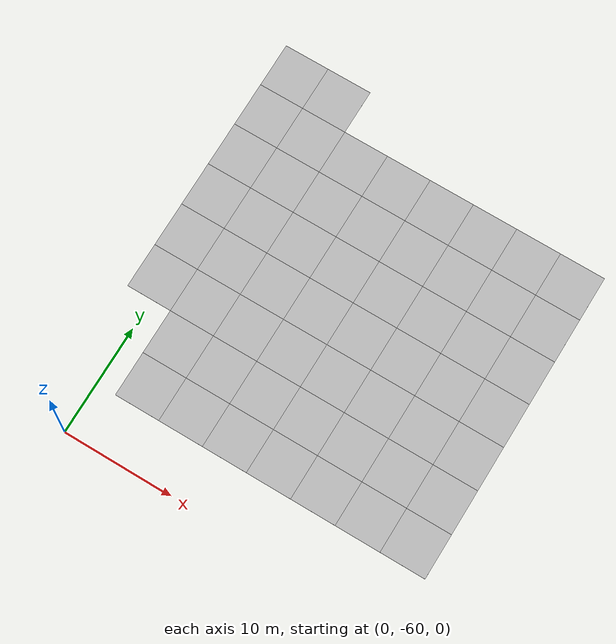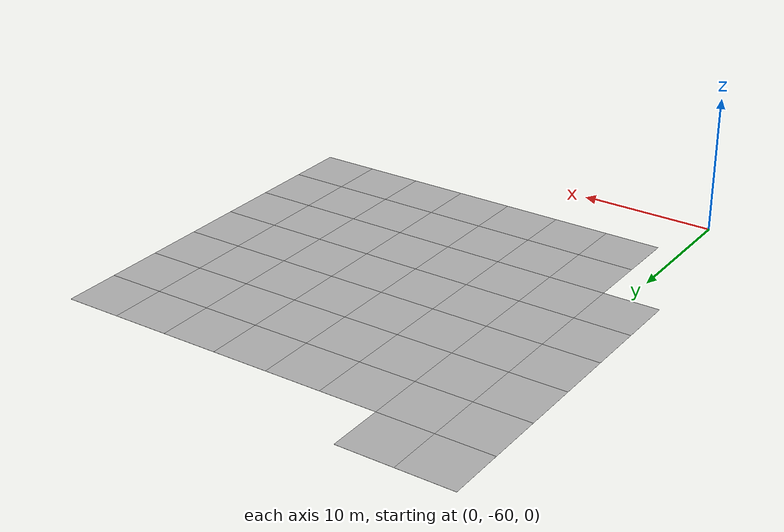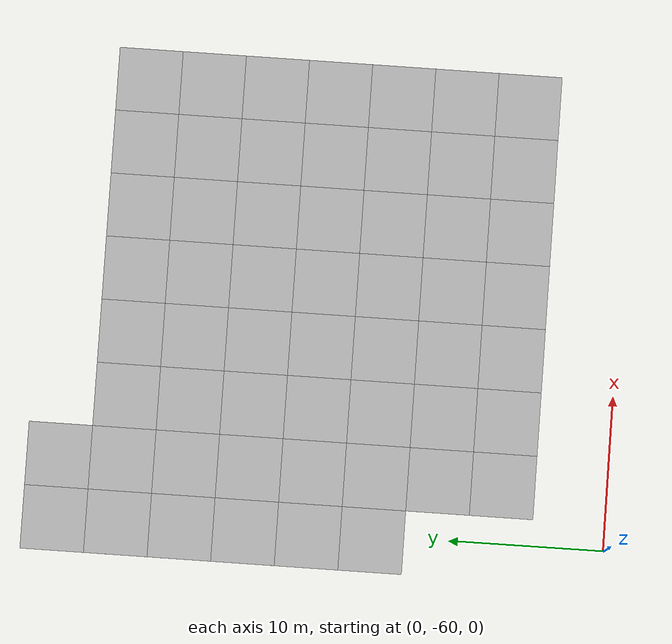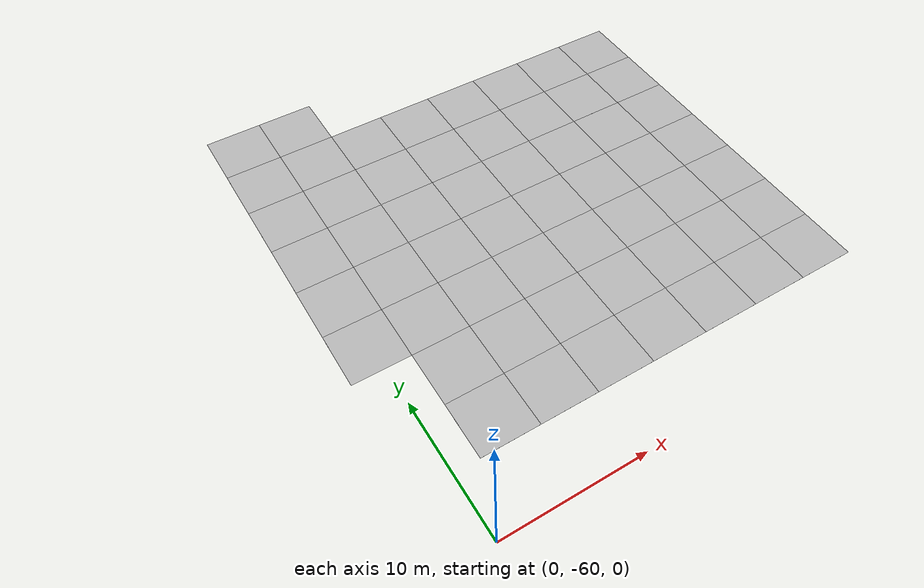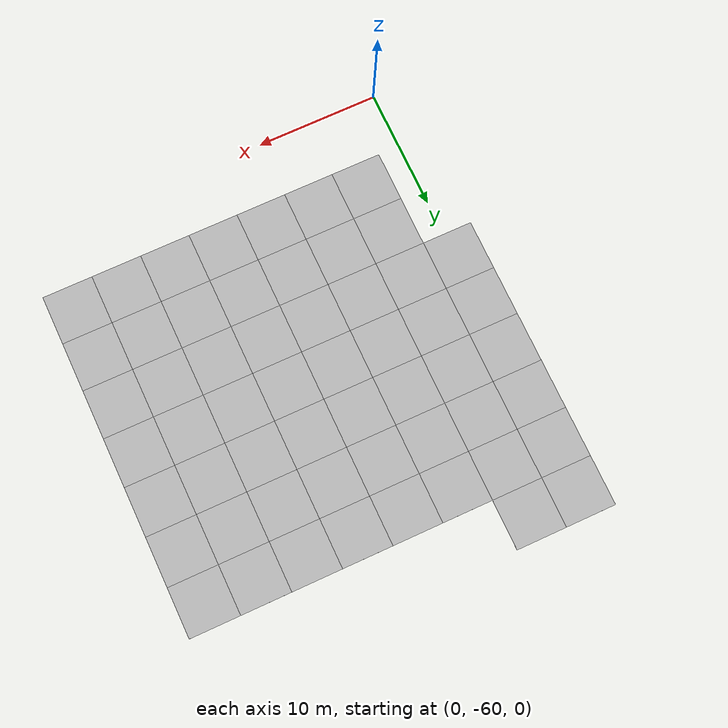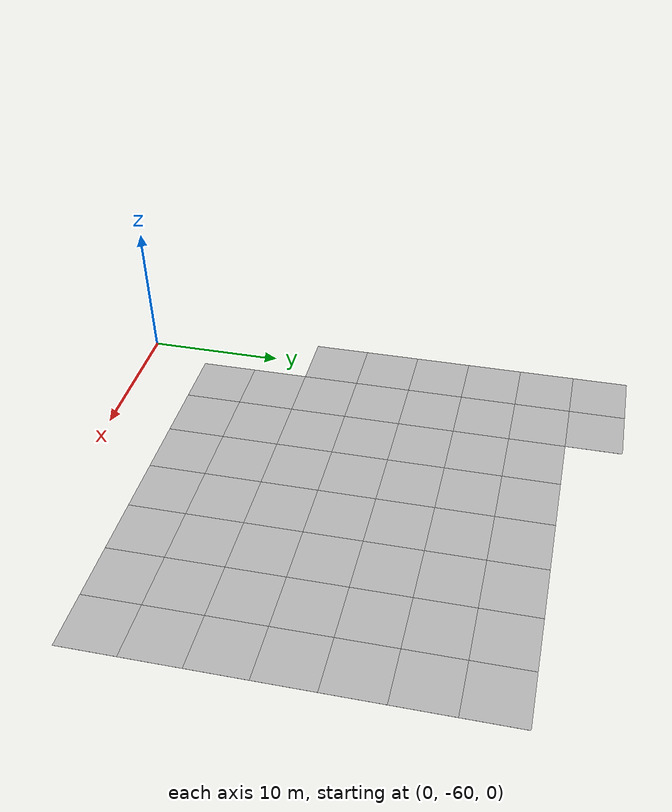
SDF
<sdf version="1.6">
 <world name="default">
  <model name="Tile/18-2">
   <static>1</static>
   <link name="link">
    <collision name="collision">
     <geometry><plane><normal>0 0 1</normal><size>4.096 4.096</size></plane></geometry>
     <surface><friction><ode><mu>100</mu><mu2>50</mu2></ode></friction></surface>
    </collision>
    <visual name="visual">
     <cast_shadows>0</cast_shadows>
     <geometry><plane><normal>0 0 1</normal><size>4.096 4.096</size></plane></geometry>
     <material>
      <script>
       <uri>file://materials/scripts</uri>
       <uri>file://materials/textures</uri>
       <name>Tile/5eab350b8220ac9944dbdfa4ac3288c7c17e24c3bf5df0dfcf6173d64dae00a1</name>
      </script>
     </material>
    </visual>
   </link>
   <pose>-0.2978730057677694 -45.104103275294236 0 0 -0 0</pose>
  </model>
  <model name="Tile/18-3">
   <static>1</static>
   <link name="link">
    <collision name="collision">
     <geometry><plane><normal>0 0 1</normal><size>4.096 4.096</size></plane></geometry>
     <surface><friction><ode><mu>100</mu><mu2>50</mu2></ode></friction></surface>
    </collision>
    <visual name="visual">
     <cast_shadows>0</cast_shadows>
     <geometry><plane><normal>0 0 1</normal><size>4.096 4.096</size></plane></geometry>
     <material>
      <script>
       <uri>file://materials/scripts</uri>
       <uri>file://materials/textures</uri>
       <name>Tile/5eab350b8220ac9944dbdfa4ac3288c7c17e24c3bf5df0dfcf6173d64dae00a1</name>
      </script>
     </material>
    </visual>
   </link>
   <pose>-0.2978730057677694 -41.00810327529424 0 0 -0 0</pose>
  </model>
  <model name="Tile/18-4">
   <static>1</static>
   <link name="link">
    <collision name="collision">
     <geometry><plane><normal>0 0 1</normal><size>4.096 4.096</size></plane></geometry>
     <surface><friction><ode><mu>100</mu><mu2>50</mu2></ode></friction></surface>
    </collision>
    <visual name="visual">
     <cast_shadows>0</cast_shadows>
     <geometry><plane><normal>0 0 1</normal><size>4.096 4.096</size></plane></geometry>
     <material>
      <script>
       <uri>file://materials/scripts</uri>
       <uri>file://materials/textures</uri>
       <name>Tile/5eab350b8220ac9944dbdfa4ac3288c7c17e24c3bf5df0dfcf6173d64dae00a1</name>
      </script>
     </material>
    </visual>
   </link>
   <pose>-0.2978730057677694 -36.91210327529424 0 0 -0 0</pose>
  </model>
  <model name="Tile/18-5">
   <static>1</static>
   <link name="link">
    <collision name="collision">
     <geometry><plane><normal>0 0 1</normal><size>4.096 4.096</size></plane></geometry>
     <surface><friction><ode><mu>100</mu><mu2>50</mu2></ode></friction></surface>
    </collision>
    <visual name="visual">
     <cast_shadows>0</cast_shadows>
     <geometry><plane><normal>0 0 1</normal><size>4.096 4.096</size></plane></geometry>
     <material>
      <script>
       <uri>file://materials/scripts</uri>
       <uri>file://materials/textures</uri>
       <name>Tile/87c2c5636cd9016cbadbebf35a038894204da70c25fd8e602689a2077810d4dc</name>
      </script>
     </material>
    </visual>
   </link>
   <pose>-0.2978730057677694 -32.81610327529424 0 0 -0 0</pose>
  </model>
  <model name="Tile/18-6">
   <static>1</static>
   <link name="link">
    <collision name="collision">
     <geometry><plane><normal>0 0 1</normal><size>4.096 4.096</size></plane></geometry>
     <surface><friction><ode><mu>100</mu><mu2>50</mu2></ode></friction></surface>
    </collision>
    <visual name="visual">
     <cast_shadows>0</cast_shadows>
     <geometry><plane><normal>0 0 1</normal><size>4.096 4.096</size></plane></geometry>
     <material>
      <script>
       <uri>file://materials/scripts</uri>
       <uri>file://materials/textures</uri>
       <name>Tile/5eab350b8220ac9944dbdfa4ac3288c7c17e24c3bf5df0dfcf6173d64dae00a1</name>
      </script>
     </material>
    </visual>
   </link>
   <pose>-0.2978730057677694 -28.72010327529424 0 0 -0 0</pose>
  </model>
  <model name="Tile/18-7">
   <static>1</static>
   <link name="link">
    <collision name="collision">
     <geometry><plane><normal>0 0 1</normal><size>4.096 4.096</size></plane></geometry>
     <surface><friction><ode><mu>100</mu><mu2>50</mu2></ode></friction></surface>
    </collision>
    <visual name="visual">
     <cast_shadows>0</cast_shadows>
     <geometry><plane><normal>0 0 1</normal><size>4.096 4.096</size></plane></geometry>
     <material>
      <script>
       <uri>file://materials/scripts</uri>
       <uri>file://materials/textures</uri>
       <name>Tile/5eab350b8220ac9944dbdfa4ac3288c7c17e24c3bf5df0dfcf6173d64dae00a1</name>
      </script>
     </material>
    </visual>
   </link>
   <pose>-0.2978730057677694 -24.62410327529424 0 0 -0 0</pose>
  </model>
  <model name="Tile/19-0">
   <static>1</static>
   <link name="link">
    <collision name="collision">
     <geometry><plane><normal>0 0 1</normal><size>4.096 4.096</size></plane></geometry>
     <surface><friction><ode><mu>100</mu><mu2>50</mu2></ode></friction></surface>
    </collision>
    <visual name="visual">
     <cast_shadows>0</cast_shadows>
     <geometry><plane><normal>0 0 1</normal><size>4.096 4.096</size></plane></geometry>
     <material>
      <script>
       <uri>file://materials/scripts</uri>
       <uri>file://materials/textures</uri>
       <name>Tile/5eab350b8220ac9944dbdfa4ac3288c7c17e24c3bf5df0dfcf6173d64dae00a1</name>
      </script>
     </material>
    </visual>
   </link>
   <pose>3.798126994232234 -53.296103275294236 0 0 -0 0</pose>
  </model>
  <model name="Tile/19-1">
   <static>1</static>
   <link name="link">
    <collision name="collision">
     <geometry><plane><normal>0 0 1</normal><size>4.096 4.096</size></plane></geometry>
     <surface><friction><ode><mu>100</mu><mu2>50</mu2></ode></friction></surface>
    </collision>
    <visual name="visual">
     <cast_shadows>0</cast_shadows>
     <geometry><plane><normal>0 0 1</normal><size>4.096 4.096</size></plane></geometry>
     <material>
      <script>
       <uri>file://materials/scripts</uri>
       <uri>file://materials/textures</uri>
       <name>Tile/5eab350b8220ac9944dbdfa4ac3288c7c17e24c3bf5df0dfcf6173d64dae00a1</name>
      </script>
     </material>
    </visual>
   </link>
   <pose>3.798126994232234 -49.20010327529424 0 0 -0 0</pose>
  </model>
  <model name="Tile/19-2">
   <static>1</static>
   <link name="link">
    <collision name="collision">
     <geometry><plane><normal>0 0 1</normal><size>4.096 4.096</size></plane></geometry>
     <surface><friction><ode><mu>100</mu><mu2>50</mu2></ode></friction></surface>
    </collision>
    <visual name="visual">
     <cast_shadows>0</cast_shadows>
     <geometry><plane><normal>0 0 1</normal><size>4.096 4.096</size></plane></geometry>
     <material>
      <script>
       <uri>file://materials/scripts</uri>
       <uri>file://materials/textures</uri>
       <name>Tile/5eab350b8220ac9944dbdfa4ac3288c7c17e24c3bf5df0dfcf6173d64dae00a1</name>
      </script>
     </material>
    </visual>
   </link>
   <pose>3.798126994232234 -45.104103275294236 0 0 -0 0</pose>
  </model>
  <model name="Tile/19-3">
   <static>1</static>
   <link name="link">
    <collision name="collision">
     <geometry><plane><normal>0 0 1</normal><size>4.096 4.096</size></plane></geometry>
     <surface><friction><ode><mu>100</mu><mu2>50</mu2></ode></friction></surface>
    </collision>
    <visual name="visual">
     <cast_shadows>0</cast_shadows>
     <geometry><plane><normal>0 0 1</normal><size>4.096 4.096</size></plane></geometry>
     <material>
      <script>
       <uri>file://materials/scripts</uri>
       <uri>file://materials/textures</uri>
       <name>Tile/5eab350b8220ac9944dbdfa4ac3288c7c17e24c3bf5df0dfcf6173d64dae00a1</name>
      </script>
     </material>
    </visual>
   </link>
   <pose>3.798126994232234 -41.00810327529424 0 0 -0 0</pose>
  </model>
  <model name="Tile/19-4">
   <static>1</static>
   <link name="link">
    <collision name="collision">
     <geometry><plane><normal>0 0 1</normal><size>4.096 4.096</size></plane></geometry>
     <surface><friction><ode><mu>100</mu><mu2>50</mu2></ode></friction></surface>
    </collision>
    <visual name="visual">
     <cast_shadows>0</cast_shadows>
     <geometry><plane><normal>0 0 1</normal><size>4.096 4.096</size></plane></geometry>
     <material>
      <script>
       <uri>file://materials/scripts</uri>
       <uri>file://materials/textures</uri>
       <name>Tile/5eab350b8220ac9944dbdfa4ac3288c7c17e24c3bf5df0dfcf6173d64dae00a1</name>
      </script>
     </material>
    </visual>
   </link>
   <pose>3.798126994232234 -36.91210327529424 0 0 -0 0</pose>
  </model>
  <model name="Tile/19-5">
   <static>1</static>
   <link name="link">
    <collision name="collision">
     <geometry><plane><normal>0 0 1</normal><size>4.096 4.096</size></plane></geometry>
     <surface><friction><ode><mu>100</mu><mu2>50</mu2></ode></friction></surface>
    </collision>
    <visual name="visual">
     <cast_shadows>0</cast_shadows>
     <geometry><plane><normal>0 0 1</normal><size>4.096 4.096</size></plane></geometry>
     <material>
      <script>
       <uri>file://materials/scripts</uri>
       <uri>file://materials/textures</uri>
       <name>Tile/03919b6bc6b4487e9b6dff6141cb65a3beb0281b3a35f18b1a4fb880b6a8d586</name>
      </script>
     </material>
    </visual>
   </link>
   <pose>3.798126994232234 -32.81610327529424 0 0 -0 0</pose>
  </model>
  <model name="Tile/19-6">
   <static>1</static>
   <link name="link">
    <collision name="collision">
     <geometry><plane><normal>0 0 1</normal><size>4.096 4.096</size></plane></geometry>
     <surface><friction><ode><mu>100</mu><mu2>50</mu2></ode></friction></surface>
    </collision>
    <visual name="visual">
     <cast_shadows>0</cast_shadows>
     <geometry><plane><normal>0 0 1</normal><size>4.096 4.096</size></plane></geometry>
     <material>
      <script>
       <uri>file://materials/scripts</uri>
       <uri>file://materials/textures</uri>
       <name>Tile/77d614ed30fff7b0ef706c1ce687feef76113b973b6084c496e85db4d1325c98</name>
      </script>
     </material>
    </visual>
   </link>
   <pose>3.798126994232234 -28.72010327529424 0 0 -0 0</pose>
  </model>
  <model name="Tile/19-7">
   <static>1</static>
   <link name="link">
    <collision name="collision">
     <geometry><plane><normal>0 0 1</normal><size>4.096 4.096</size></plane></geometry>
     <surface><friction><ode><mu>100</mu><mu2>50</mu2></ode></friction></surface>
    </collision>
    <visual name="visual">
     <cast_shadows>0</cast_shadows>
     <geometry><plane><normal>0 0 1</normal><size>4.096 4.096</size></plane></geometry>
     <material>
      <script>
       <uri>file://materials/scripts</uri>
       <uri>file://materials/textures</uri>
       <name>Tile/5eab350b8220ac9944dbdfa4ac3288c7c17e24c3bf5df0dfcf6173d64dae00a1</name>
      </script>
     </material>
    </visual>
   </link>
   <pose>3.798126994232234 -24.62410327529424 0 0 -0 0</pose>
  </model>
  <model name="Tile/20-0">
   <static>1</static>
   <link name="link">
    <collision name="collision">
     <geometry><plane><normal>0 0 1</normal><size>4.096 4.096</size></plane></geometry>
     <surface><friction><ode><mu>100</mu><mu2>50</mu2></ode></friction></surface>
    </collision>
    <visual name="visual">
     <cast_shadows>0</cast_shadows>
     <geometry><plane><normal>0 0 1</normal><size>4.096 4.096</size></plane></geometry>
     <material>
      <script>
       <uri>file://materials/scripts</uri>
       <uri>file://materials/textures</uri>
       <name>Tile/5eab350b8220ac9944dbdfa4ac3288c7c17e24c3bf5df0dfcf6173d64dae00a1</name>
      </script>
     </material>
    </visual>
   </link>
   <pose>7.894126994232238 -53.296103275294236 0 0 -0 0</pose>
  </model>
  <model name="Tile/20-1">
   <static>1</static>
   <link name="link">
    <collision name="collision">
     <geometry><plane><normal>0 0 1</normal><size>4.096 4.096</size></plane></geometry>
     <surface><friction><ode><mu>100</mu><mu2>50</mu2></ode></friction></surface>
    </collision>
    <visual name="visual">
     <cast_shadows>0</cast_shadows>
     <geometry><plane><normal>0 0 1</normal><size>4.096 4.096</size></plane></geometry>
     <material>
      <script>
       <uri>file://materials/scripts</uri>
       <uri>file://materials/textures</uri>
       <name>Tile/5eab350b8220ac9944dbdfa4ac3288c7c17e24c3bf5df0dfcf6173d64dae00a1</name>
      </script>
     </material>
    </visual>
   </link>
   <pose>7.894126994232238 -49.20010327529424 0 0 -0 0</pose>
  </model>
  <model name="Tile/20-2">
   <static>1</static>
   <link name="link">
    <collision name="collision">
     <geometry><plane><normal>0 0 1</normal><size>4.096 4.096</size></plane></geometry>
     <surface><friction><ode><mu>100</mu><mu2>50</mu2></ode></friction></surface>
    </collision>
    <visual name="visual">
     <cast_shadows>0</cast_shadows>
     <geometry><plane><normal>0 0 1</normal><size>4.096 4.096</size></plane></geometry>
     <material>
      <script>
       <uri>file://materials/scripts</uri>
       <uri>file://materials/textures</uri>
       <name>Tile/5eab350b8220ac9944dbdfa4ac3288c7c17e24c3bf5df0dfcf6173d64dae00a1</name>
      </script>
     </material>
    </visual>
   </link>
   <pose>7.894126994232238 -45.104103275294236 0 0 -0 0</pose>
  </model>
  <model name="Tile/20-3">
   <static>1</static>
   <link name="link">
    <collision name="collision">
     <geometry><plane><normal>0 0 1</normal><size>4.096 4.096</size></plane></geometry>
     <surface><friction><ode><mu>100</mu><mu2>50</mu2></ode></friction></surface>
    </collision>
    <visual name="visual">
     <cast_shadows>0</cast_shadows>
     <geometry><plane><normal>0 0 1</normal><size>4.096 4.096</size></plane></geometry>
     <material>
      <script>
       <uri>file://materials/scripts</uri>
       <uri>file://materials/textures</uri>
       <name>Tile/5eab350b8220ac9944dbdfa4ac3288c7c17e24c3bf5df0dfcf6173d64dae00a1</name>
      </script>
     </material>
    </visual>
   </link>
   <pose>7.894126994232238 -41.00810327529424 0 0 -0 0</pose>
  </model>
  <model name="Tile/20-4">
   <static>1</static>
   <link name="link">
    <collision name="collision">
     <geometry><plane><normal>0 0 1</normal><size>4.096 4.096</size></plane></geometry>
     <surface><friction><ode><mu>100</mu><mu2>50</mu2></ode></friction></surface>
    </collision>
    <visual name="visual">
     <cast_shadows>0</cast_shadows>
     <geometry><plane><normal>0 0 1</normal><size>4.096 4.096</size></plane></geometry>
     <material>
      <script>
       <uri>file://materials/scripts</uri>
       <uri>file://materials/textures</uri>
       <name>Tile/5eab350b8220ac9944dbdfa4ac3288c7c17e24c3bf5df0dfcf6173d64dae00a1</name>
      </script>
     </material>
    </visual>
   </link>
   <pose>7.894126994232238 -36.91210327529424 0 0 -0 0</pose>
  </model>
  <model name="Tile/20-5">
   <static>1</static>
   <link name="link">
    <collision name="collision">
     <geometry><plane><normal>0 0 1</normal><size>4.096 4.096</size></plane></geometry>
     <surface><friction><ode><mu>100</mu><mu2>50</mu2></ode></friction></surface>
    </collision>
    <visual name="visual">
     <cast_shadows>0</cast_shadows>
     <geometry><plane><normal>0 0 1</normal><size>4.096 4.096</size></plane></geometry>
     <material>
      <script>
       <uri>file://materials/scripts</uri>
       <uri>file://materials/textures</uri>
       <name>Tile/79fe78105b7f0f6554afedb78a3caf857d4519be2fc08a8871276f0ccac7632c</name>
      </script>
     </material>
    </visual>
   </link>
   <pose>7.894126994232238 -32.81610327529424 0 0 -0 0</pose>
  </model>
  <model name="Tile/20-6">
   <static>1</static>
   <link name="link">
    <collision name="collision">
     <geometry><plane><normal>0 0 1</normal><size>4.096 4.096</size></plane></geometry>
     <surface><friction><ode><mu>100</mu><mu2>50</mu2></ode></friction></surface>
    </collision>
    <visual name="visual">
     <cast_shadows>0</cast_shadows>
     <geometry><plane><normal>0 0 1</normal><size>4.096 4.096</size></plane></geometry>
     <material>
      <script>
       <uri>file://materials/scripts</uri>
       <uri>file://materials/textures</uri>
       <name>Tile/47748ad4abebf0f7712acb740fad4b84d475190b5b81a9c2f60942eb88e826d0</name>
      </script>
     </material>
    </visual>
   </link>
   <pose>7.894126994232238 -28.72010327529424 0 0 -0 0</pose>
  </model>
  <model name="Tile/21-0">
   <static>1</static>
   <link name="link">
    <collision name="collision">
     <geometry><plane><normal>0 0 1</normal><size>4.096 4.096</size></plane></geometry>
     <surface><friction><ode><mu>100</mu><mu2>50</mu2></ode></friction></surface>
    </collision>
    <visual name="visual">
     <cast_shadows>0</cast_shadows>
     <geometry><plane><normal>0 0 1</normal><size>4.096 4.096</size></plane></geometry>
     <material>
      <script>
       <uri>file://materials/scripts</uri>
       <uri>file://materials/textures</uri>
       <name>Tile/5eab350b8220ac9944dbdfa4ac3288c7c17e24c3bf5df0dfcf6173d64dae00a1</name>
      </script>
     </material>
    </visual>
   </link>
   <pose>11.990126994232227 -53.296103275294236 0 0 -0 0</pose>
  </model>
  <model name="Tile/21-1">
   <static>1</static>
   <link name="link">
    <collision name="collision">
     <geometry><plane><normal>0 0 1</normal><size>4.096 4.096</size></plane></geometry>
     <surface><friction><ode><mu>100</mu><mu2>50</mu2></ode></friction></surface>
    </collision>
    <visual name="visual">
     <cast_shadows>0</cast_shadows>
     <geometry><plane><normal>0 0 1</normal><size>4.096 4.096</size></plane></geometry>
     <material>
      <script>
       <uri>file://materials/scripts</uri>
       <uri>file://materials/textures</uri>
       <name>Tile/5eab350b8220ac9944dbdfa4ac3288c7c17e24c3bf5df0dfcf6173d64dae00a1</name>
      </script>
     </material>
    </visual>
   </link>
   <pose>11.990126994232227 -49.20010327529424 0 0 -0 0</pose>
  </model>
  <model name="Tile/21-2">
   <static>1</static>
   <link name="link">
    <collision name="collision">
     <geometry><plane><normal>0 0 1</normal><size>4.096 4.096</size></plane></geometry>
     <surface><friction><ode><mu>100</mu><mu2>50</mu2></ode></friction></surface>
    </collision>
    <visual name="visual">
     <cast_shadows>0</cast_shadows>
     <geometry><plane><normal>0 0 1</normal><size>4.096 4.096</size></plane></geometry>
     <material>
      <script>
       <uri>file://materials/scripts</uri>
       <uri>file://materials/textures</uri>
       <name>Tile/5eab350b8220ac9944dbdfa4ac3288c7c17e24c3bf5df0dfcf6173d64dae00a1</name>
      </script>
     </material>
    </visual>
   </link>
   <pose>11.990126994232227 -45.104103275294236 0 0 -0 0</pose>
  </model>
  <model name="Tile/21-3">
   <static>1</static>
   <link name="link">
    <collision name="collision">
     <geometry><plane><normal>0 0 1</normal><size>4.096 4.096</size></plane></geometry>
     <surface><friction><ode><mu>100</mu><mu2>50</mu2></ode></friction></surface>
    </collision>
    <visual name="visual">
     <cast_shadows>0</cast_shadows>
     <geometry><plane><normal>0 0 1</normal><size>4.096 4.096</size></plane></geometry>
     <material>
      <script>
       <uri>file://materials/scripts</uri>
       <uri>file://materials/textures</uri>
       <name>Tile/5eab350b8220ac9944dbdfa4ac3288c7c17e24c3bf5df0dfcf6173d64dae00a1</name>
      </script>
     </material>
    </visual>
   </link>
   <pose>11.990126994232227 -41.00810327529424 0 0 -0 0</pose>
  </model>
  <model name="Tile/21-4">
   <static>1</static>
   <link name="link">
    <collision name="collision">
     <geometry><plane><normal>0 0 1</normal><size>4.096 4.096</size></plane></geometry>
     <surface><friction><ode><mu>100</mu><mu2>50</mu2></ode></friction></surface>
    </collision>
    <visual name="visual">
     <cast_shadows>0</cast_shadows>
     <geometry><plane><normal>0 0 1</normal><size>4.096 4.096</size></plane></geometry>
     <material>
      <script>
       <uri>file://materials/scripts</uri>
       <uri>file://materials/textures</uri>
       <name>Tile/5eab350b8220ac9944dbdfa4ac3288c7c17e24c3bf5df0dfcf6173d64dae00a1</name>
      </script>
     </material>
    </visual>
   </link>
   <pose>11.990126994232227 -36.91210327529424 0 0 -0 0</pose>
  </model>
  <model name="Tile/21-5">
   <static>1</static>
   <link name="link">
    <collision name="collision">
     <geometry><plane><normal>0 0 1</normal><size>4.096 4.096</size></plane></geometry>
     <surface><friction><ode><mu>100</mu><mu2>50</mu2></ode></friction></surface>
    </collision>
    <visual name="visual">
     <cast_shadows>0</cast_shadows>
     <geometry><plane><normal>0 0 1</normal><size>4.096 4.096</size></plane></geometry>
     <material>
      <script>
       <uri>file://materials/scripts</uri>
       <uri>file://materials/textures</uri>
       <name>Tile/5eab350b8220ac9944dbdfa4ac3288c7c17e24c3bf5df0dfcf6173d64dae00a1</name>
      </script>
     </material>
    </visual>
   </link>
   <pose>11.990126994232227 -32.81610327529424 0 0 -0 0</pose>
  </model>
  <model name="Tile/21-6">
   <static>1</static>
   <link name="link">
    <collision name="collision">
     <geometry><plane><normal>0 0 1</normal><size>4.096 4.096</size></plane></geometry>
     <surface><friction><ode><mu>100</mu><mu2>50</mu2></ode></friction></surface>
    </collision>
    <visual name="visual">
     <cast_shadows>0</cast_shadows>
     <geometry><plane><normal>0 0 1</normal><size>4.096 4.096</size></plane></geometry>
     <material>
      <script>
       <uri>file://materials/scripts</uri>
       <uri>file://materials/textures</uri>
       <name>Tile/78e5009340789c42b99c7e99964559edfdca05bebd1ca04c5e0f6b9799ada364</name>
      </script>
     </material>
    </visual>
   </link>
   <pose>11.990126994232227 -28.72010327529424 0 0 -0 0</pose>
  </model>
  <model name="Tile/22-0">
   <static>1</static>
   <link name="link">
    <collision name="collision">
     <geometry><plane><normal>0 0 1</normal><size>4.096 4.096</size></plane></geometry>
     <surface><friction><ode><mu>100</mu><mu2>50</mu2></ode></friction></surface>
    </collision>
    <visual name="visual">
     <cast_shadows>0</cast_shadows>
     <geometry><plane><normal>0 0 1</normal><size>4.096 4.096</size></plane></geometry>
     <material>
      <script>
       <uri>file://materials/scripts</uri>
       <uri>file://materials/textures</uri>
       <name>Tile/5eab350b8220ac9944dbdfa4ac3288c7c17e24c3bf5df0dfcf6173d64dae00a1</name>
      </script>
     </material>
    </visual>
   </link>
   <pose>16.08612699423223 -53.296103275294236 0 0 -0 0</pose>
  </model>
  <model name="Tile/22-1">
   <static>1</static>
   <link name="link">
    <collision name="collision">
     <geometry><plane><normal>0 0 1</normal><size>4.096 4.096</size></plane></geometry>
     <surface><friction><ode><mu>100</mu><mu2>50</mu2></ode></friction></surface>
    </collision>
    <visual name="visual">
     <cast_shadows>0</cast_shadows>
     <geometry><plane><normal>0 0 1</normal><size>4.096 4.096</size></plane></geometry>
     <material>
      <script>
       <uri>file://materials/scripts</uri>
       <uri>file://materials/textures</uri>
       <name>Tile/5eab350b8220ac9944dbdfa4ac3288c7c17e24c3bf5df0dfcf6173d64dae00a1</name>
      </script>
     </material>
    </visual>
   </link>
   <pose>16.08612699423223 -49.20010327529424 0 0 -0 0</pose>
  </model>
  <model name="Tile/22-2">
   <static>1</static>
   <link name="link">
    <collision name="collision">
     <geometry><plane><normal>0 0 1</normal><size>4.096 4.096</size></plane></geometry>
     <surface><friction><ode><mu>100</mu><mu2>50</mu2></ode></friction></surface>
    </collision>
    <visual name="visual">
     <cast_shadows>0</cast_shadows>
     <geometry><plane><normal>0 0 1</normal><size>4.096 4.096</size></plane></geometry>
     <material>
      <script>
       <uri>file://materials/scripts</uri>
       <uri>file://materials/textures</uri>
       <name>Tile/5eab350b8220ac9944dbdfa4ac3288c7c17e24c3bf5df0dfcf6173d64dae00a1</name>
      </script>
     </material>
    </visual>
   </link>
   <pose>16.08612699423223 -45.104103275294236 0 0 -0 0</pose>
  </model>
  <model name="Tile/22-3">
   <static>1</static>
   <link name="link">
    <collision name="collision">
     <geometry><plane><normal>0 0 1</normal><size>4.096 4.096</size></plane></geometry>
     <surface><friction><ode><mu>100</mu><mu2>50</mu2></ode></friction></surface>
    </collision>
    <visual name="visual">
     <cast_shadows>0</cast_shadows>
     <geometry><plane><normal>0 0 1</normal><size>4.096 4.096</size></plane></geometry>
     <material>
      <script>
       <uri>file://materials/scripts</uri>
       <uri>file://materials/textures</uri>
       <name>Tile/5eab350b8220ac9944dbdfa4ac3288c7c17e24c3bf5df0dfcf6173d64dae00a1</name>
      </script>
     </material>
    </visual>
   </link>
   <pose>16.08612699423223 -41.00810327529424 0 0 -0 0</pose>
  </model>
  <model name="Tile/22-4">
   <static>1</static>
   <link name="link">
    <collision name="collision">
     <geometry><plane><normal>0 0 1</normal><size>4.096 4.096</size></plane></geometry>
     <surface><friction><ode><mu>100</mu><mu2>50</mu2></ode></friction></surface>
    </collision>
    <visual name="visual">
     <cast_shadows>0</cast_shadows>
     <geometry><plane><normal>0 0 1</normal><size>4.096 4.096</size></plane></geometry>
     <material>
      <script>
       <uri>file://materials/scripts</uri>
       <uri>file://materials/textures</uri>
       <name>Tile/5eab350b8220ac9944dbdfa4ac3288c7c17e24c3bf5df0dfcf6173d64dae00a1</name>
      </script>
     </material>
    </visual>
   </link>
   <pose>16.08612699423223 -36.91210327529424 0 0 -0 0</pose>
  </model>
  <model name="Tile/22-5">
   <static>1</static>
   <link name="link">
    <collision name="collision">
     <geometry><plane><normal>0 0 1</normal><size>4.096 4.096</size></plane></geometry>
     <surface><friction><ode><mu>100</mu><mu2>50</mu2></ode></friction></surface>
    </collision>
    <visual name="visual">
     <cast_shadows>0</cast_shadows>
     <geometry><plane><normal>0 0 1</normal><size>4.096 4.096</size></plane></geometry>
     <material>
      <script>
       <uri>file://materials/scripts</uri>
       <uri>file://materials/textures</uri>
       <name>Tile/5eab350b8220ac9944dbdfa4ac3288c7c17e24c3bf5df0dfcf6173d64dae00a1</name>
      </script>
     </material>
    </visual>
   </link>
   <pose>16.08612699423223 -32.81610327529424 0 0 -0 0</pose>
  </model>
  <model name="Tile/22-6">
   <static>1</static>
   <link name="link">
    <collision name="collision">
     <geometry><plane><normal>0 0 1</normal><size>4.096 4.096</size></plane></geometry>
     <surface><friction><ode><mu>100</mu><mu2>50</mu2></ode></friction></surface>
    </collision>
    <visual name="visual">
     <cast_shadows>0</cast_shadows>
     <geometry><plane><normal>0 0 1</normal><size>4.096 4.096</size></plane></geometry>
     <material>
      <script>
       <uri>file://materials/scripts</uri>
       <uri>file://materials/textures</uri>
       <name>Tile/d5778813cf193a43d348f642ca01bfe69e03dec962a3f7cfdc581074ffa94b49</name>
      </script>
     </material>
    </visual>
   </link>
   <pose>16.08612699423223 -28.72010327529424 0 0 -0 0</pose>
  </model>
  <model name="Tile/23-0">
   <static>1</static>
   <link name="link">
    <collision name="collision">
     <geometry><plane><normal>0 0 1</normal><size>4.096 4.096</size></plane></geometry>
     <surface><friction><ode><mu>100</mu><mu2>50</mu2></ode></friction></surface>
    </collision>
    <visual name="visual">
     <cast_shadows>0</cast_shadows>
     <geometry><plane><normal>0 0 1</normal><size>4.096 4.096</size></plane></geometry>
     <material>
      <script>
       <uri>file://materials/scripts</uri>
       <uri>file://materials/textures</uri>
       <name>Tile/5eab350b8220ac9944dbdfa4ac3288c7c17e24c3bf5df0dfcf6173d64dae00a1</name>
      </script>
     </material>
    </visual>
   </link>
   <pose>20.182126994232235 -53.296103275294236 0 0 -0 0</pose>
  </model>
  <model name="Tile/23-1">
   <static>1</static>
   <link name="link">
    <collision name="collision">
     <geometry><plane><normal>0 0 1</normal><size>4.096 4.096</size></plane></geometry>
     <surface><friction><ode><mu>100</mu><mu2>50</mu2></ode></friction></surface>
    </collision>
    <visual name="visual">
     <cast_shadows>0</cast_shadows>
     <geometry><plane><normal>0 0 1</normal><size>4.096 4.096</size></plane></geometry>
     <material>
      <script>
       <uri>file://materials/scripts</uri>
       <uri>file://materials/textures</uri>
       <name>Tile/5eab350b8220ac9944dbdfa4ac3288c7c17e24c3bf5df0dfcf6173d64dae00a1</name>
      </script>
     </material>
    </visual>
   </link>
   <pose>20.182126994232235 -49.20010327529424 0 0 -0 0</pose>
  </model>
  <model name="Tile/23-2">
   <static>1</static>
   <link name="link">
    <collision name="collision">
     <geometry><plane><normal>0 0 1</normal><size>4.096 4.096</size></plane></geometry>
     <surface><friction><ode><mu>100</mu><mu2>50</mu2></ode></friction></surface>
    </collision>
    <visual name="visual">
     <cast_shadows>0</cast_shadows>
     <geometry><plane><normal>0 0 1</normal><size>4.096 4.096</size></plane></geometry>
     <material>
      <script>
       <uri>file://materials/scripts</uri>
       <uri>file://materials/textures</uri>
       <name>Tile/5eab350b8220ac9944dbdfa4ac3288c7c17e24c3bf5df0dfcf6173d64dae00a1</name>
      </script>
     </material>
    </visual>
   </link>
   <pose>20.182126994232235 -45.104103275294236 0 0 -0 0</pose>
  </model>
  <model name="Tile/23-3">
   <static>1</static>
   <link name="link">
    <collision name="collision">
     <geometry><plane><normal>0 0 1</normal><size>4.096 4.096</size></plane></geometry>
     <surface><friction><ode><mu>100</mu><mu2>50</mu2></ode></friction></surface>
    </collision>
    <visual name="visual">
     <cast_shadows>0</cast_shadows>
     <geometry><plane><normal>0 0 1</normal><size>4.096 4.096</size></plane></geometry>
     <material>
      <script>
       <uri>file://materials/scripts</uri>
       <uri>file://materials/textures</uri>
       <name>Tile/5eab350b8220ac9944dbdfa4ac3288c7c17e24c3bf5df0dfcf6173d64dae00a1</name>
      </script>
     </material>
    </visual>
   </link>
   <pose>20.182126994232235 -41.00810327529424 0 0 -0 0</pose>
  </model>
  <model name="Tile/23-4">
   <static>1</static>
   <link name="link">
    <collision name="collision">
     <geometry><plane><normal>0 0 1</normal><size>4.096 4.096</size></plane></geometry>
     <surface><friction><ode><mu>100</mu><mu2>50</mu2></ode></friction></surface>
    </collision>
    <visual name="visual">
     <cast_shadows>0</cast_shadows>
     <geometry><plane><normal>0 0 1</normal><size>4.096 4.096</size></plane></geometry>
     <material>
      <script>
       <uri>file://materials/scripts</uri>
       <uri>file://materials/textures</uri>
       <name>Tile/5eab350b8220ac9944dbdfa4ac3288c7c17e24c3bf5df0dfcf6173d64dae00a1</name>
      </script>
     </material>
    </visual>
   </link>
   <pose>20.182126994232235 -36.91210327529424 0 0 -0 0</pose>
  </model>
  <model name="Tile/23-5">
   <static>1</static>
   <link name="link">
    <collision name="collision">
     <geometry><plane><normal>0 0 1</normal><size>4.096 4.096</size></plane></geometry>
     <surface><friction><ode><mu>100</mu><mu2>50</mu2></ode></friction></surface>
    </collision>
    <visual name="visual">
     <cast_shadows>0</cast_shadows>
     <geometry><plane><normal>0 0 1</normal><size>4.096 4.096</size></plane></geometry>
     <material>
      <script>
       <uri>file://materials/scripts</uri>
       <uri>file://materials/textures</uri>
       <name>Tile/5eab350b8220ac9944dbdfa4ac3288c7c17e24c3bf5df0dfcf6173d64dae00a1</name>
      </script>
     </material>
    </visual>
   </link>
   <pose>20.182126994232235 -32.81610327529424 0 0 -0 0</pose>
  </model>
  <model name="Tile/23-6">
   <static>1</static>
   <link name="link">
    <collision name="collision">
     <geometry><plane><normal>0 0 1</normal><size>4.096 4.096</size></plane></geometry>
     <surface><friction><ode><mu>100</mu><mu2>50</mu2></ode></friction></surface>
    </collision>
    <visual name="visual">
     <cast_shadows>0</cast_shadows>
     <geometry><plane><normal>0 0 1</normal><size>4.096 4.096</size></plane></geometry>
     <material>
      <script>
       <uri>file://materials/scripts</uri>
       <uri>file://materials/textures</uri>
       <name>Tile/5eab350b8220ac9944dbdfa4ac3288c7c17e24c3bf5df0dfcf6173d64dae00a1</name>
      </script>
     </material>
    </visual>
   </link>
   <pose>20.182126994232235 -28.72010327529424 0 0 -0 0</pose>
  </model>
  <model name="Tile/24-0">
   <static>1</static>
   <link name="link">
    <collision name="collision">
     <geometry><plane><normal>0 0 1</normal><size>4.096 4.096</size></plane></geometry>
     <surface><friction><ode><mu>100</mu><mu2>50</mu2></ode></friction></surface>
    </collision>
    <visual name="visual">
     <cast_shadows>0</cast_shadows>
     <geometry><plane><normal>0 0 1</normal><size>4.096 4.096</size></plane></geometry>
     <material>
      <script>
       <uri>file://materials/scripts</uri>
       <uri>file://materials/textures</uri>
       <name>Tile/5eab350b8220ac9944dbdfa4ac3288c7c17e24c3bf5df0dfcf6173d64dae00a1</name>
      </script>
     </material>
    </visual>
   </link>
   <pose>24.278126994232238 -53.296103275294236 0 0 -0 0</pose>
  </model>
  <model name="Tile/24-1">
   <static>1</static>
   <link name="link">
    <collision name="collision">
     <geometry><plane><normal>0 0 1</normal><size>4.096 4.096</size></plane></geometry>
     <surface><friction><ode><mu>100</mu><mu2>50</mu2></ode></friction></surface>
    </collision>
    <visual name="visual">
     <cast_shadows>0</cast_shadows>
     <geometry><plane><normal>0 0 1</normal><size>4.096 4.096</size></plane></geometry>
     <material>
      <script>
       <uri>file://materials/scripts</uri>
       <uri>file://materials/textures</uri>
       <name>Tile/5eab350b8220ac9944dbdfa4ac3288c7c17e24c3bf5df0dfcf6173d64dae00a1</name>
      </script>
     </material>
    </visual>
   </link>
   <pose>24.278126994232238 -49.20010327529424 0 0 -0 0</pose>
  </model>
  <model name="Tile/24-2">
   <static>1</static>
   <link name="link">
    <collision name="collision">
     <geometry><plane><normal>0 0 1</normal><size>4.096 4.096</size></plane></geometry>
     <surface><friction><ode><mu>100</mu><mu2>50</mu2></ode></friction></surface>
    </collision>
    <visual name="visual">
     <cast_shadows>0</cast_shadows>
     <geometry><plane><normal>0 0 1</normal><size>4.096 4.096</size></plane></geometry>
     <material>
      <script>
       <uri>file://materials/scripts</uri>
       <uri>file://materials/textures</uri>
       <name>Tile/5eab350b8220ac9944dbdfa4ac3288c7c17e24c3bf5df0dfcf6173d64dae00a1</name>
      </script>
     </material>
    </visual>
   </link>
   <pose>24.278126994232238 -45.104103275294236 0 0 -0 0</pose>
  </model>
  <model name="Tile/24-3">
   <static>1</static>
   <link name="link">
    <collision name="collision">
     <geometry><plane><normal>0 0 1</normal><size>4.096 4.096</size></plane></geometry>
     <surface><friction><ode><mu>100</mu><mu2>50</mu2></ode></friction></surface>
    </collision>
    <visual name="visual">
     <cast_shadows>0</cast_shadows>
     <geometry><plane><normal>0 0 1</normal><size>4.096 4.096</size></plane></geometry>
     <material>
      <script>
       <uri>file://materials/scripts</uri>
       <uri>file://materials/textures</uri>
       <name>Tile/5eab350b8220ac9944dbdfa4ac3288c7c17e24c3bf5df0dfcf6173d64dae00a1</name>
      </script>
     </material>
    </visual>
   </link>
   <pose>24.278126994232238 -41.00810327529424 0 0 -0 0</pose>
  </model>
  <model name="Tile/24-4">
   <static>1</static>
   <link name="link">
    <collision name="collision">
     <geometry><plane><normal>0 0 1</normal><size>4.096 4.096</size></plane></geometry>
     <surface><friction><ode><mu>100</mu><mu2>50</mu2></ode></friction></surface>
    </collision>
    <visual name="visual">
     <cast_shadows>0</cast_shadows>
     <geometry><plane><normal>0 0 1</normal><size>4.096 4.096</size></plane></geometry>
     <material>
      <script>
       <uri>file://materials/scripts</uri>
       <uri>file://materials/textures</uri>
       <name>Tile/5eab350b8220ac9944dbdfa4ac3288c7c17e24c3bf5df0dfcf6173d64dae00a1</name>
      </script>
     </material>
    </visual>
   </link>
   <pose>24.278126994232238 -36.91210327529424 0 0 -0 0</pose>
  </model>
  <model name="Tile/24-5">
   <static>1</static>
   <link name="link">
    <collision name="collision">
     <geometry><plane><normal>0 0 1</normal><size>4.096 4.096</size></plane></geometry>
     <surface><friction><ode><mu>100</mu><mu2>50</mu2></ode></friction></surface>
    </collision>
    <visual name="visual">
     <cast_shadows>0</cast_shadows>
     <geometry><plane><normal>0 0 1</normal><size>4.096 4.096</size></plane></geometry>
     <material>
      <script>
       <uri>file://materials/scripts</uri>
       <uri>file://materials/textures</uri>
       <name>Tile/5eab350b8220ac9944dbdfa4ac3288c7c17e24c3bf5df0dfcf6173d64dae00a1</name>
      </script>
     </material>
    </visual>
   </link>
   <pose>24.278126994232238 -32.81610327529424 0 0 -0 0</pose>
  </model>
  <model name="Tile/24-6">
   <static>1</static>
   <link name="link">
    <collision name="collision">
     <geometry><plane><normal>0 0 1</normal><size>4.096 4.096</size></plane></geometry>
     <surface><friction><ode><mu>100</mu><mu2>50</mu2></ode></friction></surface>
    </collision>
    <visual name="visual">
     <cast_shadows>0</cast_shadows>
     <geometry><plane><normal>0 0 1</normal><size>4.096 4.096</size></plane></geometry>
     <material>
      <script>
       <uri>file://materials/scripts</uri>
       <uri>file://materials/textures</uri>
       <name>Tile/5eab350b8220ac9944dbdfa4ac3288c7c17e24c3bf5df0dfcf6173d64dae00a1</name>
      </script>
     </material>
    </visual>
   </link>
   <pose>24.278126994232238 -28.72010327529424 0 0 -0 0</pose>
  </model>
  <model name="Tile/25-0">
   <static>1</static>
   <link name="link">
    <collision name="collision">
     <geometry><plane><normal>0 0 1</normal><size>4.096 4.096</size></plane></geometry>
     <surface><friction><ode><mu>100</mu><mu2>50</mu2></ode></friction></surface>
    </collision>
    <visual name="visual">
     <cast_shadows>0</cast_shadows>
     <geometry><plane><normal>0 0 1</normal><size>4.096 4.096</size></plane></geometry>
     <material>
      <script>
       <uri>file://materials/scripts</uri>
       <uri>file://materials/textures</uri>
       <name>Tile/5eab350b8220ac9944dbdfa4ac3288c7c17e24c3bf5df0dfcf6173d64dae00a1</name>
      </script>
     </material>
    </visual>
   </link>
   <pose>28.374126994232228 -53.296103275294236 0 0 -0 0</pose>
  </model>
  <model name="Tile/25-1">
   <static>1</static>
   <link name="link">
    <collision name="collision">
     <geometry><plane><normal>0 0 1</normal><size>4.096 4.096</size></plane></geometry>
     <surface><friction><ode><mu>100</mu><mu2>50</mu2></ode></friction></surface>
    </collision>
    <visual name="visual">
     <cast_shadows>0</cast_shadows>
     <geometry><plane><normal>0 0 1</normal><size>4.096 4.096</size></plane></geometry>
     <material>
      <script>
       <uri>file://materials/scripts</uri>
       <uri>file://materials/textures</uri>
       <name>Tile/5eab350b8220ac9944dbdfa4ac3288c7c17e24c3bf5df0dfcf6173d64dae00a1</name>
      </script>
     </material>
    </visual>
   </link>
   <pose>28.374126994232228 -49.20010327529424 0 0 -0 0</pose>
  </model>
  <model name="Tile/25-2">
   <static>1</static>
   <link name="link">
    <collision name="collision">
     <geometry><plane><normal>0 0 1</normal><size>4.096 4.096</size></plane></geometry>
     <surface><friction><ode><mu>100</mu><mu2>50</mu2></ode></friction></surface>
    </collision>
    <visual name="visual">
     <cast_shadows>0</cast_shadows>
     <geometry><plane><normal>0 0 1</normal><size>4.096 4.096</size></plane></geometry>
     <material>
      <script>
       <uri>file://materials/scripts</uri>
       <uri>file://materials/textures</uri>
       <name>Tile/5eab350b8220ac9944dbdfa4ac3288c7c17e24c3bf5df0dfcf6173d64dae00a1</name>
      </script>
     </material>
    </visual>
   </link>
   <pose>28.374126994232228 -45.104103275294236 0 0 -0 0</pose>
  </model>
  <model name="Tile/25-3">
   <static>1</static>
   <link name="link">
    <collision name="collision">
     <geometry><plane><normal>0 0 1</normal><size>4.096 4.096</size></plane></geometry>
     <surface><friction><ode><mu>100</mu><mu2>50</mu2></ode></friction></surface>
    </collision>
    <visual name="visual">
     <cast_shadows>0</cast_shadows>
     <geometry><plane><normal>0 0 1</normal><size>4.096 4.096</size></plane></geometry>
     <material>
      <script>
       <uri>file://materials/scripts</uri>
       <uri>file://materials/textures</uri>
       <name>Tile/5eab350b8220ac9944dbdfa4ac3288c7c17e24c3bf5df0dfcf6173d64dae00a1</name>
      </script>
     </material>
    </visual>
   </link>
   <pose>28.374126994232228 -41.00810327529424 0 0 -0 0</pose>
  </model>
  <model name="Tile/25-4">
   <static>1</static>
   <link name="link">
    <collision name="collision">
     <geometry><plane><normal>0 0 1</normal><size>4.096 4.096</size></plane></geometry>
     <surface><friction><ode><mu>100</mu><mu2>50</mu2></ode></friction></surface>
    </collision>
    <visual name="visual">
     <cast_shadows>0</cast_shadows>
     <geometry><plane><normal>0 0 1</normal><size>4.096 4.096</size></plane></geometry>
     <material>
      <script>
       <uri>file://materials/scripts</uri>
       <uri>file://materials/textures</uri>
       <name>Tile/5eab350b8220ac9944dbdfa4ac3288c7c17e24c3bf5df0dfcf6173d64dae00a1</name>
      </script>
     </material>
    </visual>
   </link>
   <pose>28.374126994232228 -36.91210327529424 0 0 -0 0</pose>
  </model>
  <model name="Tile/25-5">
   <static>1</static>
   <link name="link">
    <collision name="collision">
     <geometry><plane><normal>0 0 1</normal><size>4.096 4.096</size></plane></geometry>
     <surface><friction><ode><mu>100</mu><mu2>50</mu2></ode></friction></surface>
    </collision>
    <visual name="visual">
     <cast_shadows>0</cast_shadows>
     <geometry><plane><normal>0 0 1</normal><size>4.096 4.096</size></plane></geometry>
     <material>
      <script>
       <uri>file://materials/scripts</uri>
       <uri>file://materials/textures</uri>
       <name>Tile/5eab350b8220ac9944dbdfa4ac3288c7c17e24c3bf5df0dfcf6173d64dae00a1</name>
      </script>
     </material>
    </visual>
   </link>
   <pose>28.374126994232228 -32.81610327529424 0 0 -0 0</pose>
  </model>
  <model name="Tile/25-6">
   <static>1</static>
   <link name="link">
    <collision name="collision">
     <geometry><plane><normal>0 0 1</normal><size>4.096 4.096</size></plane></geometry>
     <surface><friction><ode><mu>100</mu><mu2>50</mu2></ode></friction></surface>
    </collision>
    <visual name="visual">
     <cast_shadows>0</cast_shadows>
     <geometry><plane><normal>0 0 1</normal><size>4.096 4.096</size></plane></geometry>
     <material>
      <script>
       <uri>file://materials/scripts</uri>
       <uri>file://materials/textures</uri>
       <name>Tile/5eab350b8220ac9944dbdfa4ac3288c7c17e24c3bf5df0dfcf6173d64dae00a1</name>
      </script>
     </material>
    </visual>
   </link>
   <pose>28.374126994232228 -28.72010327529424 0 0 -0 0</pose>
  </model>
 </world>
</sdf>
